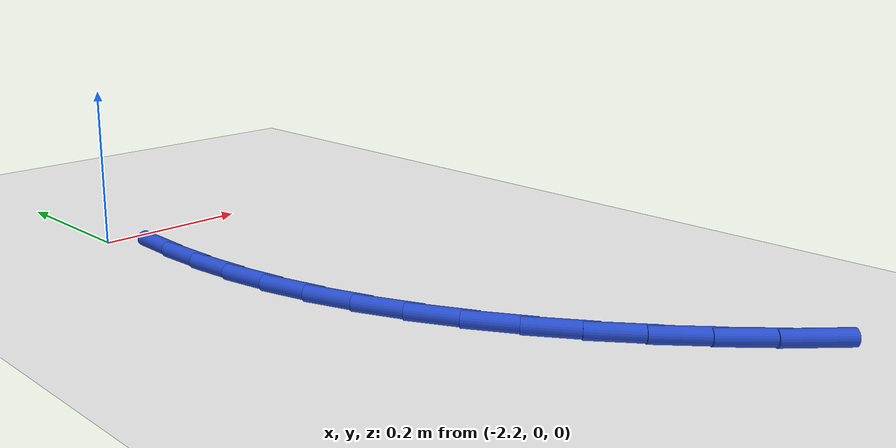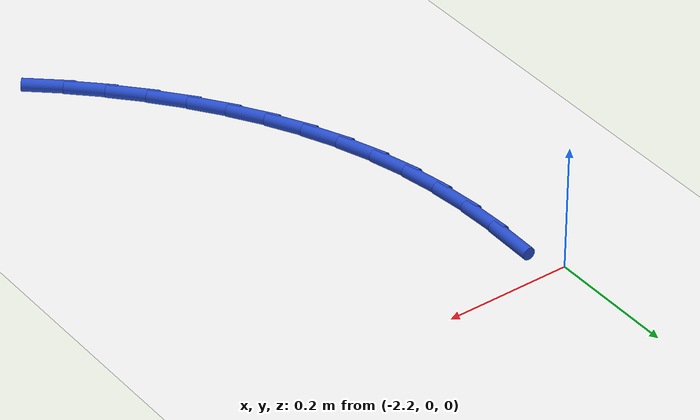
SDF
<sdf version="1.6">
 <world name="default">
  <model name="ground_plane">
   <static>1</static>
   <link name="link">
    <collision name="collision">
     <geometry><plane><normal>0 0 1</normal><size>100 100</size></plane></geometry>
     <surface><friction><ode><mu>100</mu><mu2>50</mu2></ode></friction></surface>
    </collision>
    <visual name="visual">
     <cast_shadows>0</cast_shadows>
     <geometry><plane><normal>0 0 1</normal><size>100 100</size></plane></geometry>
     <material>
      <script><uri>file://media/materials/scripts/gazebo.material</uri><name>Gazebo/WhiteGlow</name></script>
     </material>
    </visual>
   </link>
  </model>
  <model name="line">
   <link name="link_56">
    <pose>-2.170080991655831 -0.08174025157759804 0.01 0 1.57 1.5600545837674495</pose>
    <collision name="collision">
     <geometry><cylinder><radius>0.01</radius><length>0.08</length></cylinder></geometry>
    </collision>
    <visual name="visual">
     <material>
      <script><name>Gazebo/Blue</name><uri>file://media/materials/scripts/gazebo.material</uri></script>
     </material>
     <geometry><cylinder><radius>0.01</radius><length>0.08</length></cylinder></geometry>
    </visual>
   </link>
   <link name="link_57">
    <pose>-2.170732234360509 -0.1423652036856695 0.01 0 1.57 -1.5179722520957724</pose>
    <collision name="collision">
     <geometry><cylinder><radius>0.01</radius><length>0.08</length></cylinder></geometry>
    </collision>
    <visual name="visual">
     <material>
      <script><name>Gazebo/Blue</name><uri>file://media/materials/scripts/gazebo.material</uri></script>
     </material>
     <geometry><cylinder><radius>0.01</radius><length>0.08</length></cylinder></geometry>
    </visual>
   </link>
   <link name="link_58">
    <pose>-2.1675589565289877 -0.20238188636308985 0.01 0 1.57 -1.4486936741675982</pose>
    <collision name="collision">
     <geometry><cylinder><radius>0.01</radius><length>0.08</length></cylinder></geometry>
    </collision>
    <visual name="visual">
     <material>
      <script><name>Gazebo/Blue</name><uri>file://media/materials/scripts/gazebo.material</uri></script>
     </material>
     <geometry><cylinder><radius>0.01</radius><length>0.08</length></cylinder></geometry>
    </visual>
   </link>
   <link name="link_59">
    <pose>-2.160286878050439 -0.2616427001526902 0.01 0 1.57 -1.37383430494887</pose>
    <collision name="collision">
     <geometry><cylinder><radius>0.01</radius><length>0.08</length></cylinder></geometry>
    </collision>
    <visual name="visual">
     <material>
      <script><name>Gazebo/Blue</name><uri>file://media/materials/scripts/gazebo.material</uri></script>
     </material>
     <geometry><cylinder><radius>0.01</radius><length>0.08</length></cylinder></geometry>
    </visual>
   </link>
   <link name="link_60">
    <pose>-2.148641718814038 -0.32000004559729867 0.01 0 1.57 -1.2940663384309474</pose>
    <collision name="collision">
     <geometry><cylinder><radius>0.01</radius><length>0.08</length></cylinder></geometry>
    </collision>
    <visual name="visual">
     <material>
      <script><name>Gazebo/Blue</name><uri>file://media/materials/scripts/gazebo.material</uri></script>
     </material>
     <geometry><cylinder><radius>0.01</radius><length>0.08</length></cylinder></geometry>
    </visual>
   </link>
   <link name="link_61">
    <pose>-2.1323655930821754 -0.377306869029061 0.01 0 1.57 -1.2146104271382632</pose>
    <collision name="collision">
     <geometry><cylinder><radius>0.01</radius><length>0.08</length></cylinder></geometry>
    </collision>
    <visual name="visual">
     <material>
      <script><name>Gazebo/Blue</name><uri>file://media/materials/scripts/gazebo.material</uri></script>
     </material>
     <geometry><cylinder><radius>0.01</radius><length>0.08</length></cylinder></geometry>
    </visual>
   </link>
   <link name="link_62">
    <pose>-2.111486350501806 -0.4334256292706341 0.01 0 1.57 -1.1396082052791967</pose>
    <collision name="collision">
     <geometry><cylinder><radius>0.01</radius><length>0.08</length></cylinder></geometry>
    </collision>
    <visual name="visual">
     <material>
      <script><name>Gazebo/Blue</name><uri>file://media/materials/scripts/gazebo.material</uri></script>
     </material>
     <geometry><cylinder><radius>0.01</radius><length>0.08</length></cylinder></geometry>
    </visual>
   </link>
   <link name="link_63">
    <pose>-2.0862745038418997 -0.48822686370536983 0.01 0 1.57 -1.0690869552058238</pose>
    <collision name="collision">
     <geometry><cylinder><radius>0.01</radius><length>0.08</length></cylinder></geometry>
    </collision>
    <visual name="visual">
     <material>
      <script><name>Gazebo/Blue</name><uri>file://media/materials/scripts/gazebo.material</uri></script>
     </material>
     <geometry><cylinder><radius>0.01</radius><length>0.08</length></cylinder></geometry>
    </visual>
   </link>
   <link name="link_64">
    <pose>-2.057008273634508 -0.54158136631775 0.01 0 1.57 -1.002798010728486</pose>
    <collision name="collision">
     <geometry><cylinder><radius>0.01</radius><length>0.08</length></cylinder></geometry>
    </collision>
    <visual name="visual">
     <material>
      <script><name>Gazebo/Blue</name><uri>file://media/materials/scripts/gazebo.material</uri></script>
     </material>
     <geometry><cylinder><radius>0.01</radius><length>0.08</length></cylinder></geometry>
    </visual>
   </link>
   <link name="link_65">
    <pose>-2.0239658804116836 -0.5933599310922584 0.01 0 1.57 -0.9403913635190387</pose>
    <collision name="collision">
     <geometry><cylinder><radius>0.01</radius><length>0.08</length></cylinder></geometry>
    </collision>
    <visual name="visual">
     <material>
      <script><name>Gazebo/Blue</name><uri>file://media/materials/scripts/gazebo.material</uri></script>
     </material>
     <geometry><cylinder><radius>0.01</radius><length>0.08</length></cylinder></geometry>
    </visual>
   </link>
   <link name="link_66">
    <pose>-1.9874255447054774 -0.6434333520133786 0.01 0 1.57 -0.8814550116366607</pose>
    <collision name="collision">
     <geometry><cylinder><radius>0.01</radius><length>0.08</length></cylinder></geometry>
    </collision>
    <visual name="visual">
     <material>
      <script><name>Gazebo/Blue</name><uri>file://media/materials/scripts/gazebo.material</uri></script>
     </material>
     <geometry><cylinder><radius>0.01</radius><length>0.08</length></cylinder></geometry>
    </visual>
   </link>
   <link name="link_67">
    <pose>-1.9476654870479408 -0.6916724230655923 0.01 0 1.57 -0.825543739161134</pose>
    <collision name="collision">
     <geometry><cylinder><radius>0.01</radius><length>0.08</length></cylinder></geometry>
    </collision>
    <visual name="visual">
     <material>
      <script><name>Gazebo/Blue</name><uri>file://media/materials/scripts/gazebo.material</uri></script>
     </material>
     <geometry><cylinder><radius>0.01</radius><length>0.08</length></cylinder></geometry>
    </visual>
   </link>
   <link name="link_68">
    <pose>-1.9049639279711257 -0.7379479382333838 0.01 0 1.57 -0.7721982771881122</pose>
    <collision name="collision">
     <geometry><cylinder><radius>0.01</radius><length>0.08</length></cylinder></geometry>
    </collision>
    <visual name="visual">
     <material>
      <script><name>Gazebo/Blue</name><uri>file://media/materials/scripts/gazebo.material</uri></script>
     </material>
     <geometry><cylinder><radius>0.01</radius><length>0.08</length></cylinder></geometry>
    </visual>
   </link>
   <link name="link_69">
    <pose>-1.8595990880070843 -0.7821306915012352 0.01 0 1.57 -0.720956573385211</pose>
    <collision name="collision">
     <geometry><cylinder><radius>0.01</radius><length>0.08</length></cylinder></geometry>
    </collision>
    <visual name="visual">
     <material>
      <script><name>Gazebo/Blue</name><uri>file://media/materials/scripts/gazebo.material</uri></script>
     </material>
     <geometry><cylinder><radius>0.01</radius><length>0.08</length></cylinder></geometry>
    </visual>
   </link>
  </model>
 </world>
</sdf>
